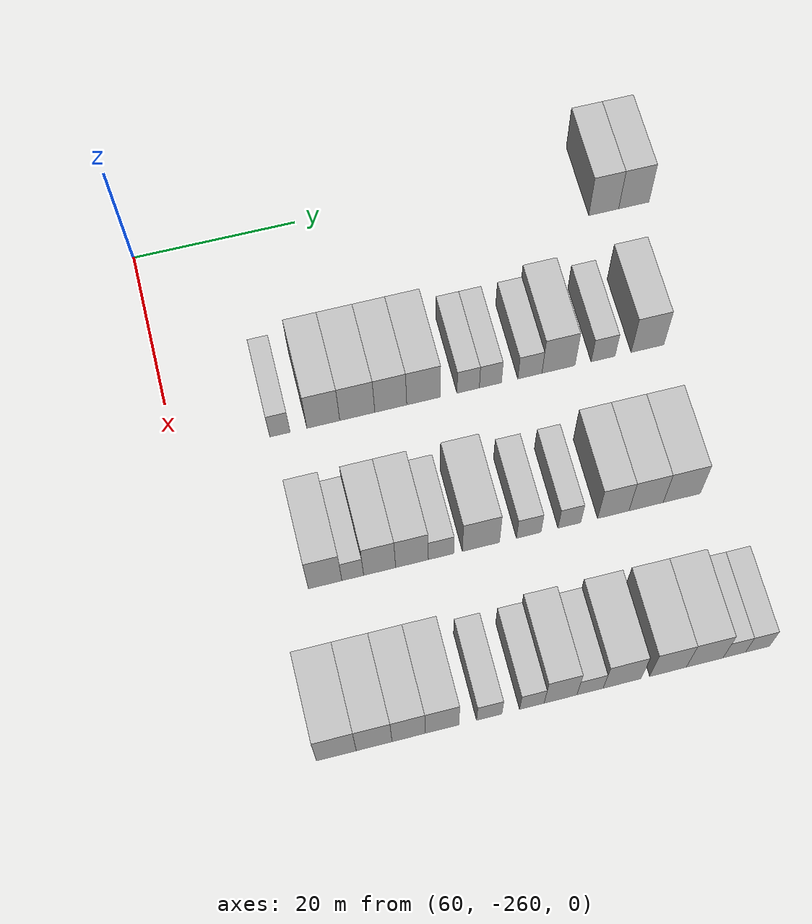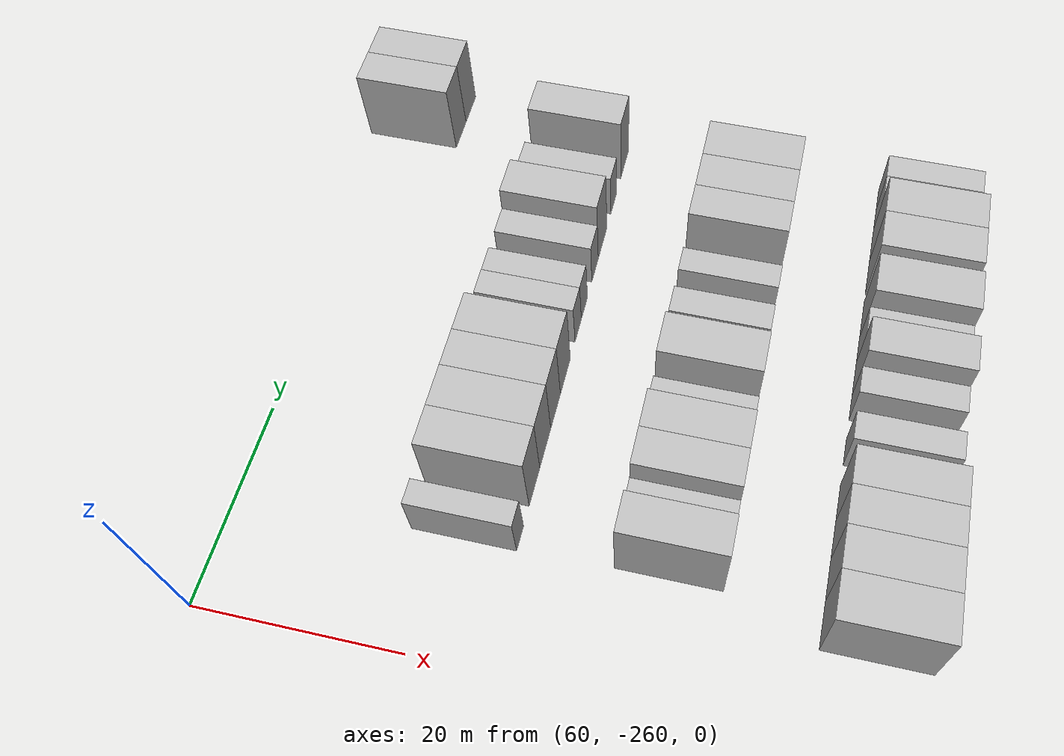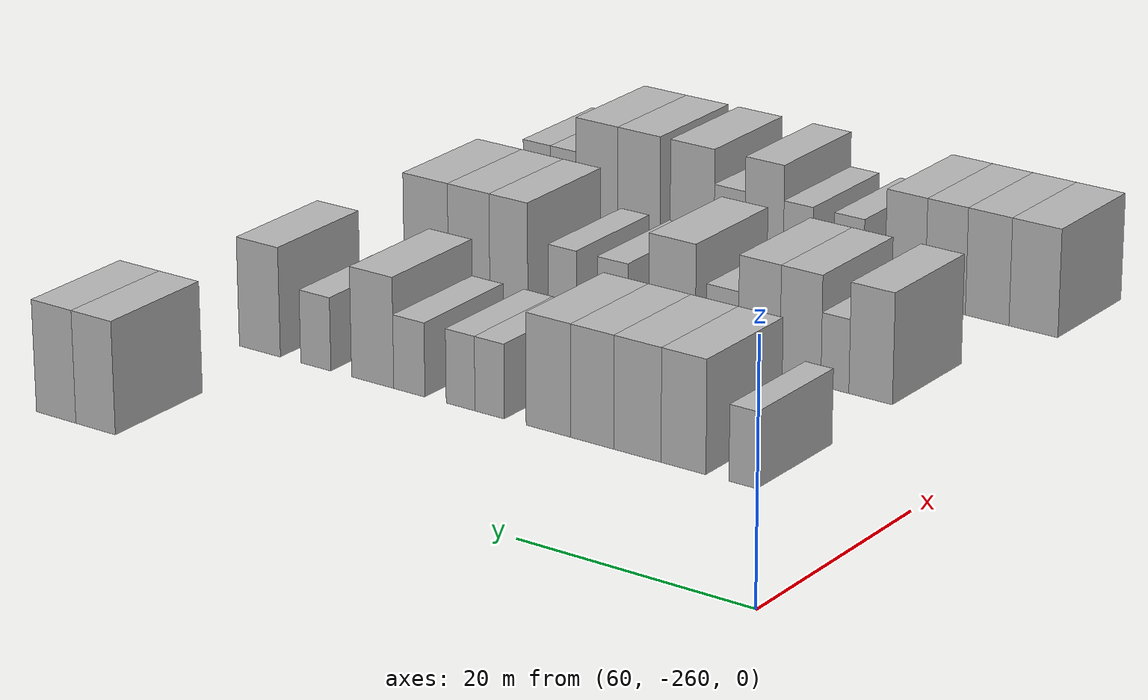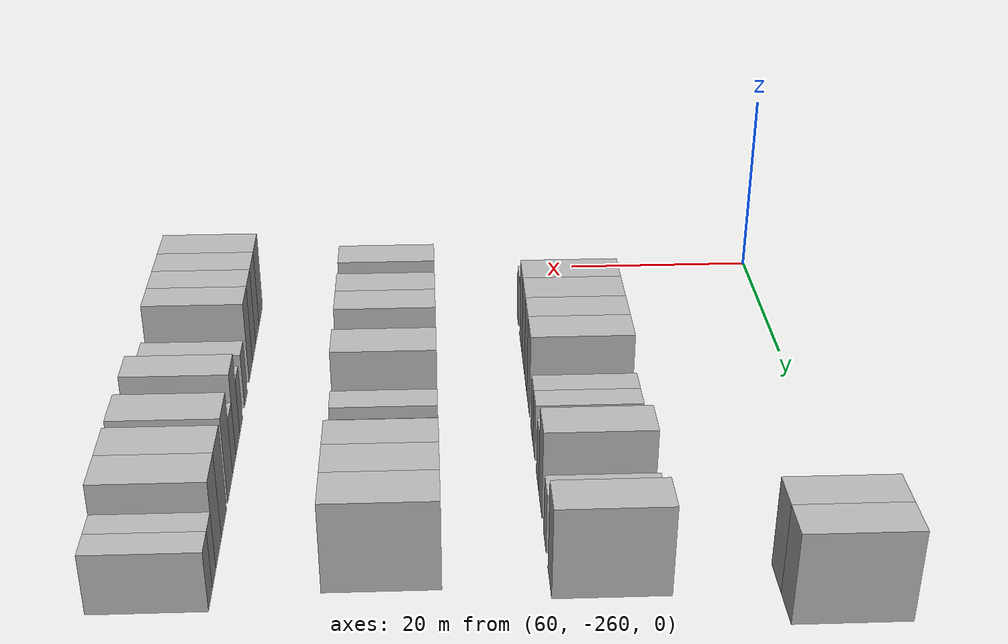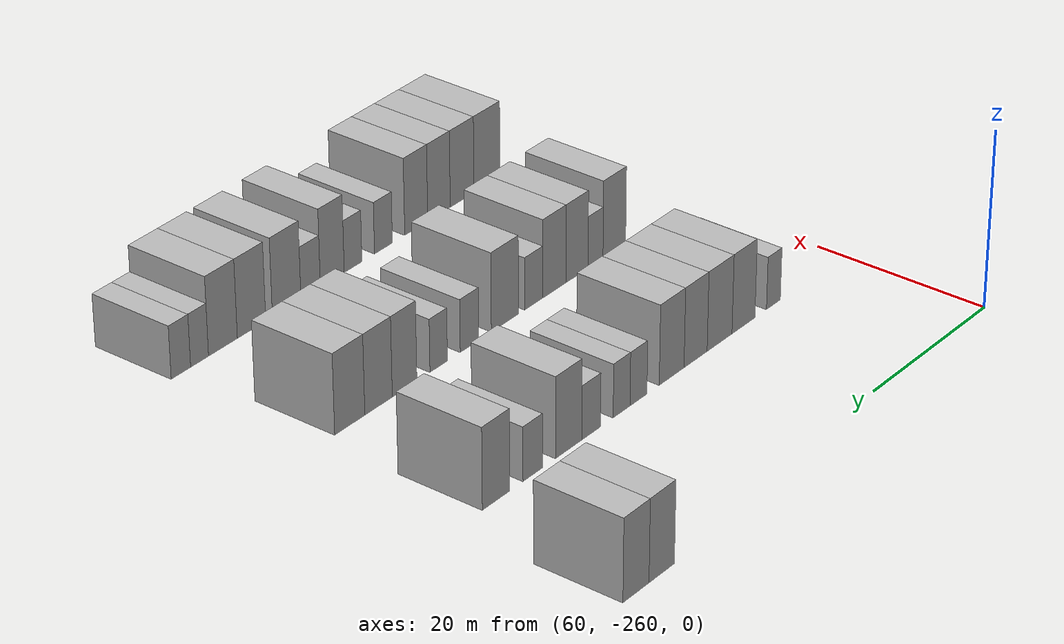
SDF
<sdf version="1.6">
 <world name="default">
  <model name="building_379">
   <static>1</static>
   <pose>63.0000 -202.8135 0 0.000000 0.000000 0.000000</pose>
   <link name="link">
    <pose>0 0 4.50 0 0 0</pose>
    <collision name="collision"><geometry><box><size>10.0000 3.8467 9.0000</size></box></geometry></collision>
    <visual name="visual">
     <cast_shadows>0</cast_shadows>
     <geometry><box><size>10.0000 3.8467 9.0000</size></box></geometry>
     <material>
      <script>
       <uri>model://HANNAS_wall/materials/scripts</uri>
       <uri>model://HANNAS_wall/materials/textures</uri>
       <name>vrc/HANNAS_wall</name>
      </script>
     </material>
    </visual>
   </link>
  </model>
  <model name="building_380">
   <static>1</static>
   <pose>63.0000 -198.9438 0 0.000000 0.000000 0.000000</pose>
   <link name="link">
    <pose>0 0 4.50 0 0 0</pose>
    <collision name="collision"><geometry><box><size>10.0000 3.8928 9.0000</size></box></geometry></collision>
    <visual name="visual">
     <cast_shadows>0</cast_shadows>
     <geometry><box><size>10.0000 3.8928 9.0000</size></box></geometry>
     <material>
      <script>
       <uri>model://HANNAS_wall/materials/scripts</uri>
       <uri>model://HANNAS_wall/materials/textures</uri>
       <name>vrc/HANNAS_wall</name>
      </script>
     </material>
    </visual>
   </link>
  </model>
  <model name="building_546">
   <static>1</static>
   <pose>82.0000 -247.6705 0 0.000000 0.000000 0.000000</pose>
   <link name="link">
    <pose>0 0 3.00 0 0 0</pose>
    <collision name="collision"><geometry><box><size>10.0000 2.4222 6.0000</size></box></geometry></collision>
    <visual name="visual">
     <cast_shadows>0</cast_shadows>
     <geometry><box><size>10.0000 2.4222 6.0000</size></box></geometry>
     <material>
      <script>
       <uri>model://HANNAS_wall/materials/scripts</uri>
       <uri>model://HANNAS_wall/materials/textures</uri>
       <name>vrc/HANNAS_wall</name>
      </script>
     </material>
    </visual>
   </link>
  </model>
  <model name="building_547">
   <static>1</static>
   <pose>82.0000 -242.4932 0 0.000000 0.000000 0.000000</pose>
   <link name="link">
    <pose>0 0 4.50 0 0 0</pose>
    <collision name="collision"><geometry><box><size>10.0000 3.9324 9.0000</size></box></geometry></collision>
    <visual name="visual">
     <cast_shadows>0</cast_shadows>
     <geometry><box><size>10.0000 3.9324 9.0000</size></box></geometry>
     <material>
      <script>
       <uri>model://HANNAS_wall/materials/scripts</uri>
       <uri>model://HANNAS_wall/materials/textures</uri>
       <name>vrc/HANNAS_wall</name>
      </script>
     </material>
    </visual>
   </link>
  </model>
  <model name="building_548">
   <static>1</static>
   <pose>82.0000 -238.4257 0 0.000000 0.000000 0.000000</pose>
   <link name="link">
    <pose>0 0 4.50 0 0 0</pose>
    <collision name="collision"><geometry><box><size>10.0000 4.2026 9.0000</size></box></geometry></collision>
    <visual name="visual">
     <cast_shadows>0</cast_shadows>
     <geometry><box><size>10.0000 4.2026 9.0000</size></box></geometry>
     <material>
      <script>
       <uri>model://HANNAS_wall/materials/scripts</uri>
       <uri>model://HANNAS_wall/materials/textures</uri>
       <name>vrc/HANNAS_wall</name>
      </script>
     </material>
    </visual>
   </link>
  </model>
  <model name="building_549">
   <static>1</static>
   <pose>82.0000 -234.3999 0 0.000000 0.000000 0.000000</pose>
   <link name="link">
    <pose>0 0 4.50 0 0 0</pose>
    <collision name="collision"><geometry><box><size>10.0000 3.8489 9.0000</size></box></geometry></collision>
    <visual name="visual">
     <cast_shadows>0</cast_shadows>
     <geometry><box><size>10.0000 3.8489 9.0000</size></box></geometry>
     <material>
      <script>
       <uri>model://HANNAS_wall/materials/scripts</uri>
       <uri>model://HANNAS_wall/materials/textures</uri>
       <name>vrc/HANNAS_wall</name>
      </script>
     </material>
    </visual>
   </link>
  </model>
  <model name="building_550">
   <static>1</static>
   <pose>82.0000 -230.4365 0 0.000000 0.000000 0.000000</pose>
   <link name="link">
    <pose>0 0 4.50 0 0 0</pose>
    <collision name="collision"><geometry><box><size>10.0000 4.0778 9.0000</size></box></geometry></collision>
    <visual name="visual">
     <cast_shadows>0</cast_shadows>
     <geometry><box><size>10.0000 4.0778 9.0000</size></box></geometry>
     <material>
      <script>
       <uri>model://HANNAS_wall/materials/scripts</uri>
       <uri>model://HANNAS_wall/materials/textures</uri>
       <name>vrc/HANNAS_wall</name>
      </script>
     </material>
    </visual>
   </link>
  </model>
  <model name="building_551">
   <static>1</static>
   <pose>82.0000 -225.0351 0 0.000000 0.000000 0.000000</pose>
   <link name="link">
    <pose>0 0 3.00 0 0 0</pose>
    <collision name="collision"><geometry><box><size>10.0000 2.7250 6.0000</size></box></geometry></collision>
    <visual name="visual">
     <cast_shadows>0</cast_shadows>
     <geometry><box><size>10.0000 2.7250 6.0000</size></box></geometry>
     <material>
      <script>
       <uri>model://HANNAS_wall/materials/scripts</uri>
       <uri>model://HANNAS_wall/materials/textures</uri>
       <name>vrc/HANNAS_wall</name>
      </script>
     </material>
    </visual>
   </link>
  </model>
  <model name="building_552">
   <static>1</static>
   <pose>82.0000 -222.3273 0 0.000000 0.000000 0.000000</pose>
   <link name="link">
    <pose>0 0 3.00 0 0 0</pose>
    <collision name="collision"><geometry><box><size>10.0000 2.6908 6.0000</size></box></geometry></collision>
    <visual name="visual">
     <cast_shadows>0</cast_shadows>
     <geometry><box><size>10.0000 2.6908 6.0000</size></box></geometry>
     <material>
      <script>
       <uri>model://HANNAS_wall/materials/scripts</uri>
       <uri>model://HANNAS_wall/materials/textures</uri>
       <name>vrc/HANNAS_wall</name>
      </script>
     </material>
    </visual>
   </link>
  </model>
  <model name="building_553">
   <static>1</static>
   <pose>82.0000 -217.5042 0 0.000000 0.000000 0.000000</pose>
   <link name="link">
    <pose>0 0 3.00 0 0 0</pose>
    <collision name="collision"><geometry><box><size>10.0000 2.9554 6.0000</size></box></geometry></collision>
    <visual name="visual">
     <cast_shadows>0</cast_shadows>
     <geometry><box><size>10.0000 2.9554 6.0000</size></box></geometry>
     <material>
      <script>
       <uri>model://HANNAS_wall/materials/scripts</uri>
       <uri>model://HANNAS_wall/materials/textures</uri>
       <name>vrc/HANNAS_wall</name>
      </script>
     </material>
    </visual>
   </link>
  </model>
  <model name="building_554">
   <static>1</static>
   <pose>82.0000 -214.0004 0 0.000000 0.000000 0.000000</pose>
   <link name="link">
    <pose>0 0 4.50 0 0 0</pose>
    <collision name="collision"><geometry><box><size>10.0000 4.0522 9.0000</size></box></geometry></collision>
    <visual name="visual">
     <cast_shadows>0</cast_shadows>
     <geometry><box><size>10.0000 4.0522 9.0000</size></box></geometry>
     <material>
      <script>
       <uri>model://HANNAS_wall/materials/scripts</uri>
       <uri>model://HANNAS_wall/materials/textures</uri>
       <name>vrc/HANNAS_wall</name>
      </script>
     </material>
    </visual>
   </link>
  </model>
  <model name="building_555">
   <static>1</static>
   <pose>82.0000 -208.5017 0 0.000000 0.000000 0.000000</pose>
   <link name="link">
    <pose>0 0 3.00 0 0 0</pose>
    <collision name="collision"><geometry><box><size>10.0000 2.9451 6.0000</size></box></geometry></collision>
    <visual name="visual">
     <cast_shadows>0</cast_shadows>
     <geometry><box><size>10.0000 2.9451 6.0000</size></box></geometry>
     <material>
      <script>
       <uri>model://HANNAS_wall/materials/scripts</uri>
       <uri>model://HANNAS_wall/materials/textures</uri>
       <name>vrc/HANNAS_wall</name>
      </script>
     </material>
    </visual>
   </link>
  </model>
  <model name="building_556">
   <static>1</static>
   <pose>82.0000 -202.9977 0 0.000000 0.000000 0.000000</pose>
   <link name="link">
    <pose>0 0 4.50 0 0 0</pose>
    <collision name="collision"><geometry><box><size>10.0000 4.0630 9.0000</size></box></geometry></collision>
    <visual name="visual">
     <cast_shadows>0</cast_shadows>
     <geometry><box><size>10.0000 4.0630 9.0000</size></box></geometry>
     <material>
      <script>
       <uri>model://HANNAS_wall/materials/scripts</uri>
       <uri>model://HANNAS_wall/materials/textures</uri>
       <name>vrc/HANNAS_wall</name>
      </script>
     </material>
    </visual>
   </link>
  </model>
  <model name="building_722">
   <static>1</static>
   <pose>101.0000 -246.6048 0 0.000000 0.000000 0.000000</pose>
   <link name="link">
    <pose>0 0 4.50 0 0 0</pose>
    <collision name="collision"><geometry><box><size>10.0000 3.8644 9.0000</size></box></geometry></collision>
    <visual name="visual">
     <cast_shadows>0</cast_shadows>
     <geometry><box><size>10.0000 3.8644 9.0000</size></box></geometry>
     <material>
      <script>
       <uri>model://HANNAS_wall/materials/scripts</uri>
       <uri>model://HANNAS_wall/materials/textures</uri>
       <name>vrc/HANNAS_wall</name>
      </script>
     </material>
    </visual>
   </link>
  </model>
  <model name="building_723">
   <static>1</static>
   <pose>101.0000 -243.4198 0 0.000000 0.000000 0.000000</pose>
   <link name="link">
    <pose>0 0 3.00 0 0 0</pose>
    <collision name="collision"><geometry><box><size>10.0000 2.5055 6.0000</size></box></geometry></collision>
    <visual name="visual">
     <cast_shadows>0</cast_shadows>
     <geometry><box><size>10.0000 2.5055 6.0000</size></box></geometry>
     <material>
      <script>
       <uri>model://HANNAS_wall/materials/scripts</uri>
       <uri>model://HANNAS_wall/materials/textures</uri>
       <name>vrc/HANNAS_wall</name>
      </script>
     </material>
    </visual>
   </link>
  </model>
  <model name="building_724">
   <static>1</static>
   <pose>101.0000 -240.3123 0 0.000000 0.000000 0.000000</pose>
   <link name="link">
    <pose>0 0 4.50 0 0 0</pose>
    <collision name="collision"><geometry><box><size>10.0000 3.7096 9.0000</size></box></geometry></collision>
    <visual name="visual">
     <cast_shadows>0</cast_shadows>
     <geometry><box><size>10.0000 3.7096 9.0000</size></box></geometry>
     <material>
      <script>
       <uri>model://HANNAS_wall/materials/scripts</uri>
       <uri>model://HANNAS_wall/materials/textures</uri>
       <name>vrc/HANNAS_wall</name>
      </script>
     </material>
    </visual>
   </link>
  </model>
  <model name="building_725">
   <static>1</static>
   <pose>101.0000 -236.5567 0 0.000000 0.000000 0.000000</pose>
   <link name="link">
    <pose>0 0 4.50 0 0 0</pose>
    <collision name="collision"><geometry><box><size>10.0000 3.8016 9.0000</size></box></geometry></collision>
    <visual name="visual">
     <cast_shadows>0</cast_shadows>
     <geometry><box><size>10.0000 3.8016 9.0000</size></box></geometry>
     <material>
      <script>
       <uri>model://HANNAS_wall/materials/scripts</uri>
       <uri>model://HANNAS_wall/materials/textures</uri>
       <name>vrc/HANNAS_wall</name>
      </script>
     </material>
    </visual>
   </link>
  </model>
  <model name="building_726">
   <static>1</static>
   <pose>101.0000 -233.1750 0 0.000000 0.000000 0.000000</pose>
   <link name="link">
    <pose>0 0 3.00 0 0 0</pose>
    <collision name="collision"><geometry><box><size>10.0000 2.9618 6.0000</size></box></geometry></collision>
    <visual name="visual">
     <cast_shadows>0</cast_shadows>
     <geometry><box><size>10.0000 2.9618 6.0000</size></box></geometry>
     <material>
      <script>
       <uri>model://HANNAS_wall/materials/scripts</uri>
       <uri>model://HANNAS_wall/materials/textures</uri>
       <name>vrc/HANNAS_wall</name>
      </script>
     </material>
    </visual>
   </link>
  </model>
  <model name="building_727">
   <static>1</static>
   <pose>101.0000 -228.5203 0 0.000000 0.000000 0.000000</pose>
   <link name="link">
    <pose>0 0 4.50 0 0 0</pose>
    <collision name="collision"><geometry><box><size>10.0000 4.3475 9.0000</size></box></geometry></collision>
    <visual name="visual">
     <cast_shadows>0</cast_shadows>
     <geometry><box><size>10.0000 4.3475 9.0000</size></box></geometry>
     <material>
      <script>
       <uri>model://HANNAS_wall/materials/scripts</uri>
       <uri>model://HANNAS_wall/materials/textures</uri>
       <name>vrc/HANNAS_wall</name>
      </script>
     </material>
    </visual>
   </link>
  </model>
  <model name="building_728">
   <static>1</static>
   <pose>101.0000 -222.8981 0 0.000000 0.000000 0.000000</pose>
   <link name="link">
    <pose>0 0 3.00 0 0 0</pose>
    <collision name="collision"><geometry><box><size>10.0000 2.8969 6.0000</size></box></geometry></collision>
    <visual name="visual">
     <cast_shadows>0</cast_shadows>
     <geometry><box><size>10.0000 2.8969 6.0000</size></box></geometry>
     <material>
      <script>
       <uri>model://HANNAS_wall/materials/scripts</uri>
       <uri>model://HANNAS_wall/materials/textures</uri>
       <name>vrc/HANNAS_wall</name>
      </script>
     </material>
    </visual>
   </link>
  </model>
  <model name="building_729">
   <static>1</static>
   <pose>101.0000 -218.1016 0 0.000000 0.000000 0.000000</pose>
   <link name="link">
    <pose>0 0 3.00 0 0 0</pose>
    <collision name="collision"><geometry><box><size>10.0000 2.6963 6.0000</size></box></geometry></collision>
    <visual name="visual">
     <cast_shadows>0</cast_shadows>
     <geometry><box><size>10.0000 2.6963 6.0000</size></box></geometry>
     <material>
      <script>
       <uri>model://HANNAS_wall/materials/scripts</uri>
       <uri>model://HANNAS_wall/materials/textures</uri>
       <name>vrc/HANNAS_wall</name>
      </script>
     </material>
    </visual>
   </link>
  </model>
  <model name="building_730">
   <static>1</static>
   <pose>101.0000 -212.8890 0 0.000000 0.000000 0.000000</pose>
   <link name="link">
    <pose>0 0 4.50 0 0 0</pose>
    <collision name="collision"><geometry><box><size>10.0000 3.7288 9.0000</size></box></geometry></collision>
    <visual name="visual">
     <cast_shadows>0</cast_shadows>
     <geometry><box><size>10.0000 3.7288 9.0000</size></box></geometry>
     <material>
      <script>
       <uri>model://HANNAS_wall/materials/scripts</uri>
       <uri>model://HANNAS_wall/materials/textures</uri>
       <name>vrc/HANNAS_wall</name>
      </script>
     </material>
    </visual>
   </link>
  </model>
  <model name="building_731">
   <static>1</static>
   <pose>101.0000 -208.9734 0 0.000000 0.000000 0.000000</pose>
   <link name="link">
    <pose>0 0 4.50 0 0 0</pose>
    <collision name="collision"><geometry><box><size>10.0000 4.1023 9.0000</size></box></geometry></collision>
    <visual name="visual">
     <cast_shadows>0</cast_shadows>
     <geometry><box><size>10.0000 4.1023 9.0000</size></box></geometry>
     <material>
      <script>
       <uri>model://HANNAS_wall/materials/scripts</uri>
       <uri>model://HANNAS_wall/materials/textures</uri>
       <name>vrc/HANNAS_wall</name>
      </script>
     </material>
    </visual>
   </link>
  </model>
  <model name="building_732">
   <static>1</static>
   <pose>101.0000 -204.7044 0 0.000000 0.000000 0.000000</pose>
   <link name="link">
    <pose>0 0 4.50 0 0 0</pose>
    <collision name="collision"><geometry><box><size>10.0000 4.4357 9.0000</size></box></geometry></collision>
    <visual name="visual">
     <cast_shadows>0</cast_shadows>
     <geometry><box><size>10.0000 4.4357 9.0000</size></box></geometry>
     <material>
      <script>
       <uri>model://HANNAS_wall/materials/scripts</uri>
       <uri>model://HANNAS_wall/materials/textures</uri>
       <name>vrc/HANNAS_wall</name>
      </script>
     </material>
    </visual>
   </link>
  </model>
  <model name="building_889">
   <static>1</static>
   <pose>120.0000 -249.6788 0 0.000000 0.000000 0.000000</pose>
   <link name="link">
    <pose>0 0 4.50 0 0 0</pose>
    <collision name="collision"><geometry><box><size>10.0000 4.3957 9.0000</size></box></geometry></collision>
    <visual name="visual">
     <cast_shadows>0</cast_shadows>
     <geometry><box><size>10.0000 4.3957 9.0000</size></box></geometry>
     <material>
      <script>
       <uri>model://HANNAS_wall/materials/scripts</uri>
       <uri>model://HANNAS_wall/materials/textures</uri>
       <name>vrc/HANNAS_wall</name>
      </script>
     </material>
    </visual>
   </link>
  </model>
  <model name="building_890">
   <static>1</static>
   <pose>120.0000 -245.4952 0 0.000000 0.000000 0.000000</pose>
   <link name="link">
    <pose>0 0 4.50 0 0 0</pose>
    <collision name="collision"><geometry><box><size>10.0000 3.9716 9.0000</size></box></geometry></collision>
    <visual name="visual">
     <cast_shadows>0</cast_shadows>
     <geometry><box><size>10.0000 3.9716 9.0000</size></box></geometry>
     <material>
      <script>
       <uri>model://HANNAS_wall/materials/scripts</uri>
       <uri>model://HANNAS_wall/materials/textures</uri>
       <name>vrc/HANNAS_wall</name>
      </script>
     </material>
    </visual>
   </link>
  </model>
  <model name="building_891">
   <static>1</static>
   <pose>120.0000 -241.6517 0 0.000000 0.000000 0.000000</pose>
   <link name="link">
    <pose>0 0 4.50 0 0 0</pose>
    <collision name="collision"><geometry><box><size>10.0000 3.7154 9.0000</size></box></geometry></collision>
    <visual name="visual">
     <cast_shadows>0</cast_shadows>
     <geometry><box><size>10.0000 3.7154 9.0000</size></box></geometry>
     <material>
      <script>
       <uri>model://HANNAS_wall/materials/scripts</uri>
       <uri>model://HANNAS_wall/materials/textures</uri>
       <name>vrc/HANNAS_wall</name>
      </script>
     </material>
    </visual>
   </link>
  </model>
  <model name="building_892">
   <static>1</static>
   <pose>120.0000 -237.9183 0 0.000000 0.000000 0.000000</pose>
   <link name="link">
    <pose>0 0 4.50 0 0 0</pose>
    <collision name="collision"><geometry><box><size>10.0000 3.7513 9.0000</size></box></geometry></collision>
    <visual name="visual">
     <cast_shadows>0</cast_shadows>
     <geometry><box><size>10.0000 3.7513 9.0000</size></box></geometry>
     <material>
      <script>
       <uri>model://HANNAS_wall/materials/scripts</uri>
       <uri>model://HANNAS_wall/materials/textures</uri>
       <name>vrc/HANNAS_wall</name>
      </script>
     </material>
    </visual>
   </link>
  </model>
  <model name="building_893">
   <static>1</static>
   <pose>120.0000 -232.6178 0 0.000000 0.000000 0.000000</pose>
   <link name="link">
    <pose>0 0 3.00 0 0 0</pose>
    <collision name="collision"><geometry><box><size>10.0000 2.8497 6.0000</size></box></geometry></collision>
    <visual name="visual">
     <cast_shadows>0</cast_shadows>
     <geometry><box><size>10.0000 2.8497 6.0000</size></box></geometry>
     <material>
      <script>
       <uri>model://HANNAS_wall/materials/scripts</uri>
       <uri>model://HANNAS_wall/materials/textures</uri>
       <name>vrc/HANNAS_wall</name>
      </script>
     </material>
    </visual>
   </link>
  </model>
  <model name="building_894">
   <static>1</static>
   <pose>120.0000 -227.8016 0 0.000000 0.000000 0.000000</pose>
   <link name="link">
    <pose>0 0 3.00 0 0 0</pose>
    <collision name="collision"><geometry><box><size>10.0000 2.7826 6.0000</size></box></geometry></collision>
    <visual name="visual">
     <cast_shadows>0</cast_shadows>
     <geometry><box><size>10.0000 2.7826 6.0000</size></box></geometry>
     <material>
      <script>
       <uri>model://HANNAS_wall/materials/scripts</uri>
       <uri>model://HANNAS_wall/materials/textures</uri>
       <name>vrc/HANNAS_wall</name>
      </script>
     </material>
    </visual>
   </link>
  </model>
  <model name="building_895">
   <static>1</static>
   <pose>120.0000 -224.5502 0 0.000000 0.000000 0.000000</pose>
   <link name="link">
    <pose>0 0 4.50 0 0 0</pose>
    <collision name="collision"><geometry><box><size>10.0000 3.7203 9.0000</size></box></geometry></collision>
    <visual name="visual">
     <cast_shadows>0</cast_shadows>
     <geometry><box><size>10.0000 3.7203 9.0000</size></box></geometry>
     <material>
      <script>
       <uri>model://HANNAS_wall/materials/scripts</uri>
       <uri>model://HANNAS_wall/materials/textures</uri>
       <name>vrc/HANNAS_wall</name>
      </script>
     </material>
    </visual>
   </link>
  </model>
  <model name="building_896">
   <static>1</static>
   <pose>120.0000 -221.1931 0 0.000000 0.000000 0.000000</pose>
   <link name="link">
    <pose>0 0 3.00 0 0 0</pose>
    <collision name="collision"><geometry><box><size>10.0000 2.9938 6.0000</size></box></geometry></collision>
    <visual name="visual">
     <cast_shadows>0</cast_shadows>
     <geometry><box><size>10.0000 2.9938 6.0000</size></box></geometry>
     <material>
      <script>
       <uri>model://HANNAS_wall/materials/scripts</uri>
       <uri>model://HANNAS_wall/materials/textures</uri>
       <name>vrc/HANNAS_wall</name>
      </script>
     </material>
    </visual>
   </link>
  </model>
  <model name="building_897">
   <static>1</static>
   <pose>120.0000 -217.5289 0 0.000000 0.000000 0.000000</pose>
   <link name="link">
    <pose>0 0 4.50 0 0 0</pose>
    <collision name="collision"><geometry><box><size>10.0000 4.3346 9.0000</size></box></geometry></collision>
    <visual name="visual">
     <cast_shadows>0</cast_shadows>
     <geometry><box><size>10.0000 4.3346 9.0000</size></box></geometry>
     <material>
      <script>
       <uri>model://HANNAS_wall/materials/scripts</uri>
       <uri>model://HANNAS_wall/materials/textures</uri>
       <name>vrc/HANNAS_wall</name>
      </script>
     </material>
    </visual>
   </link>
  </model>
  <model name="building_898">
   <static>1</static>
   <pose>120.0000 -212.2460 0 0.000000 0.000000 0.000000</pose>
   <link name="link">
    <pose>0 0 4.50 0 0 0</pose>
    <collision name="collision"><geometry><box><size>10.0000 4.2312 9.0000</size></box></geometry></collision>
    <visual name="visual">
     <cast_shadows>0</cast_shadows>
     <geometry><box><size>10.0000 4.2312 9.0000</size></box></geometry>
     <material>
      <script>
       <uri>model://HANNAS_wall/materials/scripts</uri>
       <uri>model://HANNAS_wall/materials/textures</uri>
       <name>vrc/HANNAS_wall</name>
      </script>
     </material>
    </visual>
   </link>
  </model>
  <model name="building_899">
   <static>1</static>
   <pose>120.0000 -208.0103 0 0.000000 0.000000 0.000000</pose>
   <link name="link">
    <pose>0 0 4.50 0 0 0</pose>
    <collision name="collision"><geometry><box><size>10.0000 4.2401 9.0000</size></box></geometry></collision>
    <visual name="visual">
     <cast_shadows>0</cast_shadows>
     <geometry><box><size>10.0000 4.2401 9.0000</size></box></geometry>
     <material>
      <script>
       <uri>model://HANNAS_wall/materials/scripts</uri>
       <uri>model://HANNAS_wall/materials/textures</uri>
       <name>vrc/HANNAS_wall</name>
      </script>
     </material>
    </visual>
   </link>
  </model>
  <model name="building_900">
   <static>1</static>
   <pose>120.0000 -204.5917 0 0.000000 0.000000 0.000000</pose>
   <link name="link">
    <pose>0 0 3.00 0 0 0</pose>
    <collision name="collision"><geometry><box><size>10.0000 2.5970 6.0000</size></box></geometry></collision>
    <visual name="visual">
     <cast_shadows>0</cast_shadows>
     <geometry><box><size>10.0000 2.5970 6.0000</size></box></geometry>
     <material>
      <script>
       <uri>model://HANNAS_wall/materials/scripts</uri>
       <uri>model://HANNAS_wall/materials/textures</uri>
       <name>vrc/HANNAS_wall</name>
      </script>
     </material>
    </visual>
   </link>
  </model>
  <model name="building_901">
   <static>1</static>
   <pose>120.0000 -201.8953 0 0.000000 0.000000 0.000000</pose>
   <link name="link">
    <pose>0 0 3.00 0 0 0</pose>
    <collision name="collision"><geometry><box><size>10.0000 2.7958 6.0000</size></box></geometry></collision>
    <visual name="visual">
     <cast_shadows>0</cast_shadows>
     <geometry><box><size>10.0000 2.7958 6.0000</size></box></geometry>
     <material>
      <script>
       <uri>model://HANNAS_wall/materials/scripts</uri>
       <uri>model://HANNAS_wall/materials/textures</uri>
       <name>vrc/HANNAS_wall</name>
      </script>
     </material>
    </visual>
   </link>
  </model>
 </world>
</sdf>
